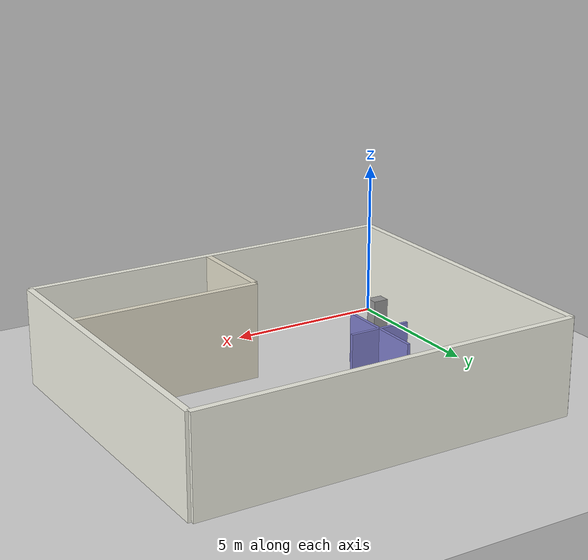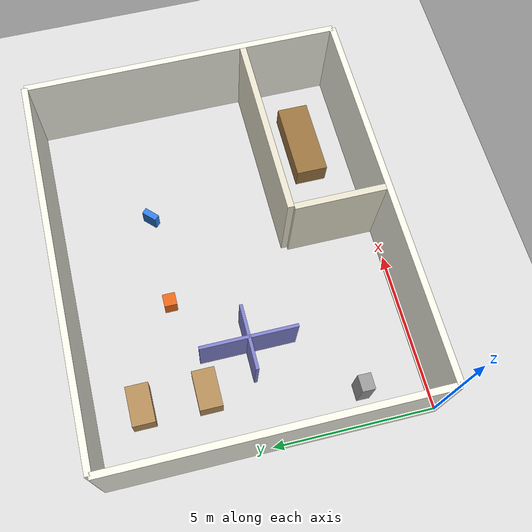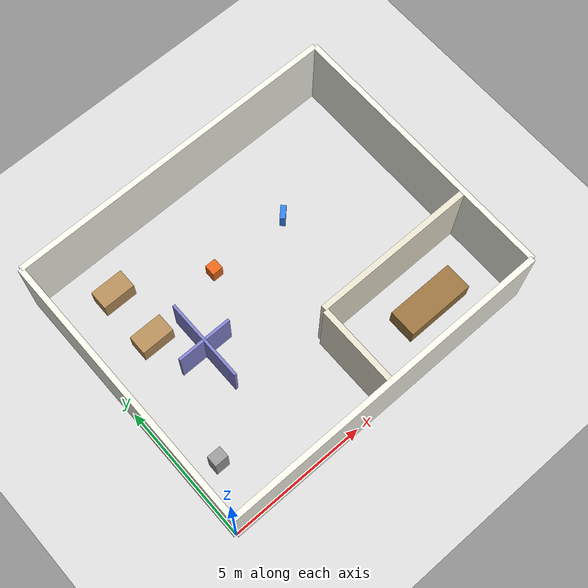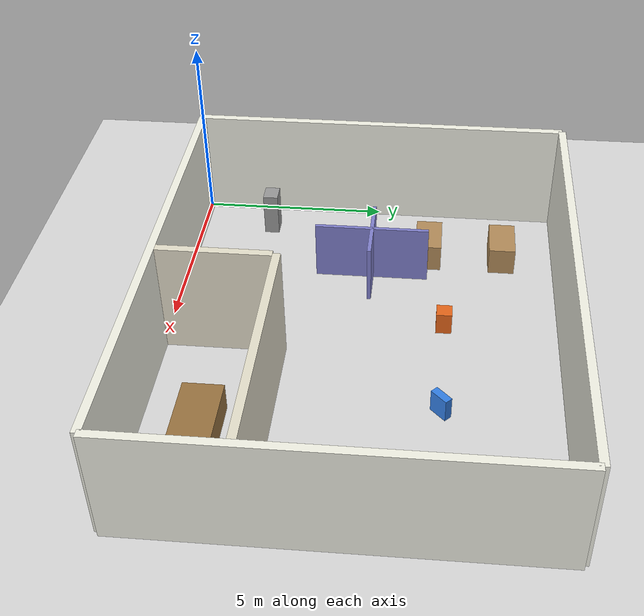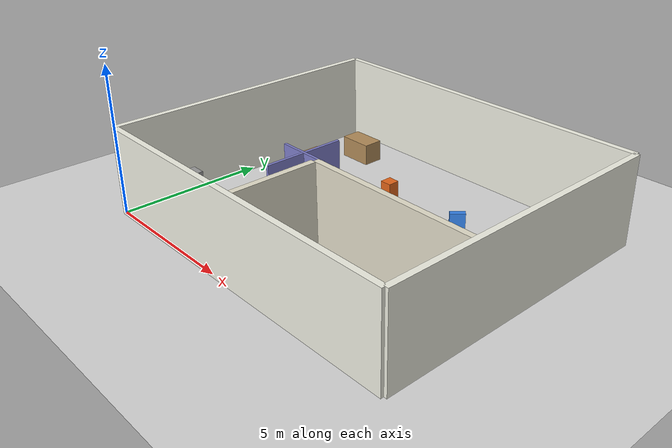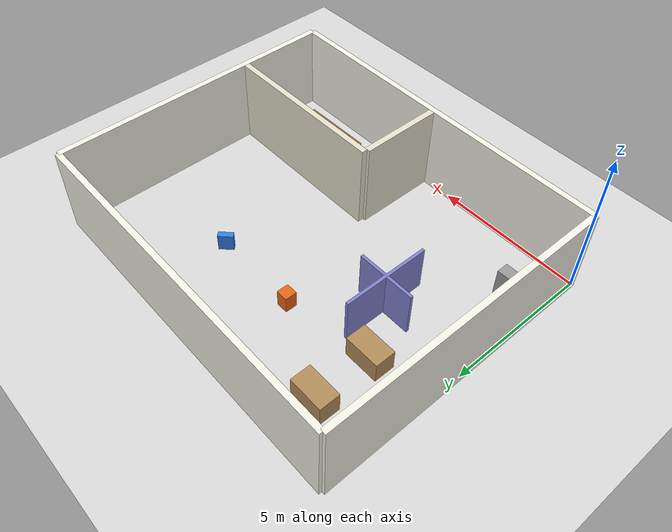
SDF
<?xml version="1.0" ?>
<!--
  Office World for Ground Robot Indoor Navigation (Gazebo Harmonic / SDF 1.9)
  Layout: Open-plan office with cubicles, corridors, and meeting room.
-->
<sdf version="1.9">
  <world name="office">

    <!-- ── Physics ─────────────────────────────────────────────────────── -->
    <physics name="default" type="dart">
      <max_step_size>0.004</max_step_size>
      <real_time_factor>1</real_time_factor>
    </physics>

    <!-- ── Required plugins ────────────────────────────────────────────── -->
    <plugin filename="gz-sim-physics-system"
            name="gz::sim::systems::Physics"/>
    <plugin filename="gz-sim-user-commands-system"
            name="gz::sim::systems::UserCommands"/>
    <plugin filename="gz-sim-scene-broadcaster-system"
            name="gz::sim::systems::SceneBroadcaster"/>
    <plugin filename="gz-sim-sensors-system"
            name="gz::sim::systems::Sensors">
      <render_engine>ogre2</render_engine>
    </plugin>
    <plugin filename="gz-sim-contact-system"
            name="gz::sim::systems::Contact"/>

    <!-- ── Lighting ─────────────────────────────────────────────────────── -->
    <light type="directional" name="sun">
      <cast_shadows>true</cast_shadows>
      <pose>0 0 10 0 0 0</pose>
      <diffuse>0.9 0.9 0.9 1</diffuse>
      <specular>0.2 0.2 0.2 1</specular>
      <direction>-0.5 0.1 -0.9</direction>
    </light>

    <!-- ── Ground plane ─────────────────────────────────────────────────── -->
    <model name="ground_plane">
      <static>true</static>
      <link name="link">
        <collision name="collision">
          <geometry>
            <plane><normal>0 0 1</normal><size>100 100</size></plane>
          </geometry>
        </collision>
        <visual name="visual">
          <geometry>
            <plane><normal>0 0 1</normal><size>100 100</size></plane>
          </geometry>
          <material><ambient>0.85 0.85 0.85 1</ambient><diffuse>0.85 0.85 0.85 1</diffuse></material>
        </visual>
      </link>
    </model>

    <!-- ── OUTER WALLS ──────────────────────────────────────────────────── -->
    <model name="wall_south">
      <static>true</static>
      <pose>6 0 1.5 0 0 0</pose>
      <link name="link">
        <collision name="collision"><geometry><box><size>12 0.2 3.0</size></box></geometry></collision>
        <visual name="visual">
          <geometry><box><size>12 0.2 3.0</size></box></geometry>
          <material><ambient>0.95 0.95 0.9 1</ambient><diffuse>0.95 0.95 0.9 1</diffuse></material>
        </visual>
      </link>
    </model>

    <model name="wall_north">
      <static>true</static>
      <pose>6 10 1.5 0 0 0</pose>
      <link name="link">
        <collision name="collision"><geometry><box><size>12 0.2 3.0</size></box></geometry></collision>
        <visual name="visual">
          <geometry><box><size>12 0.2 3.0</size></box></geometry>
          <material><ambient>0.95 0.95 0.9 1</ambient><diffuse>0.95 0.95 0.9 1</diffuse></material>
        </visual>
      </link>
    </model>

    <model name="wall_west">
      <static>true</static>
      <pose>0 5 1.5 0 0 0</pose>
      <link name="link">
        <collision name="collision"><geometry><box><size>0.2 10 3.0</size></box></geometry></collision>
        <visual name="visual">
          <geometry><box><size>0.2 10 3.0</size></box></geometry>
          <material><ambient>0.95 0.95 0.9 1</ambient><diffuse>0.95 0.95 0.9 1</diffuse></material>
        </visual>
      </link>
    </model>

    <model name="wall_east">
      <static>true</static>
      <pose>12 5 1.5 0 0 0</pose>
      <link name="link">
        <collision name="collision"><geometry><box><size>0.2 10 3.0</size></box></geometry></collision>
        <visual name="visual">
          <geometry><box><size>0.2 10 3.0</size></box></geometry>
          <material><ambient>0.95 0.95 0.9 1</ambient><diffuse>0.95 0.95 0.9 1</diffuse></material>
        </visual>
      </link>
    </model>

    <!-- ── MEETING ROOM (south-east corner) ─────────────────────────────── -->
    <!-- South wall of meeting room (inner) -->
    <model name="meeting_wall_south">
      <static>true</static>
      <pose>9 3 1.5 0 0 0</pose>
      <link name="link">
        <collision name="collision"><geometry><box><size>5.8 0.2 3.0</size></box></geometry></collision>
        <visual name="visual">
          <geometry><box><size>5.8 0.2 3.0</size></box></geometry>
          <material><ambient>0.9 0.88 0.8 1</ambient><diffuse>0.9 0.88 0.8 1</diffuse></material>
        </visual>
      </link>
    </model>

    <!-- West wall of meeting room with door gap -->
    <model name="meeting_wall_west_lower">
      <static>true</static>
      <pose>6.1 1.5 1.5 0 0 0</pose>
      <link name="link">
        <collision name="collision"><geometry><box><size>0.2 2.8 3.0</size></box></geometry></collision>
        <visual name="visual">
          <geometry><box><size>0.2 2.8 3.0</size></box></geometry>
          <material><ambient>0.9 0.88 0.8 1</ambient><diffuse>0.9 0.88 0.8 1</diffuse></material>
        </visual>
      </link>
    </model>

    <!-- ── CUBICLE DIVIDERS ─────────────────────────────────────────────── -->
    <model name="cubicle_divider_1">
      <static>true</static>
      <pose>3 5 0.8 0 0 0</pose>
      <link name="link">
        <collision name="collision"><geometry><box><size>0.1 3 1.6</size></box></geometry></collision>
        <visual name="visual">
          <geometry><box><size>0.1 3 1.6</size></box></geometry>
          <material><ambient>0.5 0.5 0.7 1</ambient><diffuse>0.5 0.5 0.8 1</diffuse></material>
        </visual>
      </link>
    </model>

    <model name="cubicle_divider_2">
      <static>true</static>
      <pose>3 5 0.8 0 0 1.5708</pose>
      <link name="link">
        <collision name="collision"><geometry><box><size>0.1 2 1.6</size></box></geometry></collision>
        <visual name="visual">
          <geometry><box><size>0.1 2 1.6</size></box></geometry>
          <material><ambient>0.5 0.5 0.7 1</ambient><diffuse>0.5 0.5 0.8 1</diffuse></material>
        </visual>
      </link>
    </model>

    <!-- ── OFFICE FURNITURE ─────────────────────────────────────────────── -->

    <!-- Desk 1 -->
    <model name="desk_1">
      <static>true</static>
      <pose>2 6.5 0.375 0 0 0</pose>
      <link name="link">
        <collision name="collision"><geometry><box><size>1.2 0.7 0.75</size></box></geometry></collision>
        <visual name="visual">
          <geometry><box><size>1.2 0.7 0.75</size></box></geometry>
          <material><ambient>0.7 0.55 0.35 1</ambient><diffuse>0.7 0.55 0.35 1</diffuse></material>
        </visual>
      </link>
    </model>

    <!-- Desk 2 -->
    <model name="desk_2">
      <static>true</static>
      <pose>2 8.5 0.375 0 0 0</pose>
      <link name="link">
        <collision name="collision"><geometry><box><size>1.2 0.7 0.75</size></box></geometry></collision>
        <visual name="visual">
          <geometry><box><size>1.2 0.7 0.75</size></box></geometry>
          <material><ambient>0.7 0.55 0.35 1</ambient><diffuse>0.7 0.55 0.35 1</diffuse></material>
        </visual>
      </link>
    </model>

    <!-- Filing cabinet -->
    <model name="filing_cabinet">
      <static>true</static>
      <pose>1 2 0.6 0 0 0</pose>
      <link name="link">
        <collision name="collision"><geometry><box><size>0.5 0.4 1.2</size></box></geometry></collision>
        <visual name="visual">
          <geometry><box><size>0.5 0.4 1.2</size></box></geometry>
          <material><ambient>0.6 0.6 0.6 1</ambient><diffuse>0.6 0.6 0.6 1</diffuse></material>
        </visual>
      </link>
    </model>

    <!-- Meeting table -->
    <model name="meeting_table">
      <static>true</static>
      <pose>9.5 1.5 0.375 0 0 0</pose>
      <link name="link">
        <collision name="collision"><geometry><box><size>2.5 1.0 0.75</size></box></geometry></collision>
        <visual name="visual">
          <geometry><box><size>2.5 1.0 0.75</size></box></geometry>
          <material><ambient>0.55 0.4 0.2 1</ambient><diffuse>0.6 0.45 0.25 1</diffuse></material>
        </visual>
      </link>
    </model>

    <!-- ── OBSTACLES ─────────────────────────────────────────────────────── -->
    <model name="obstacle_1">
      <static>true</static>
      <pose>5 7 0.3 0 0 0</pose>
      <link name="link">
        <collision name="collision"><geometry><box><size>0.4 0.4 0.6</size></box></geometry></collision>
        <visual name="visual">
          <geometry><box><size>0.4 0.4 0.6</size></box></geometry>
          <material><ambient>0.9 0.4 0.1 1</ambient><diffuse>0.9 0.4 0.1 1</diffuse></material>
        </visual>
      </link>
    </model>

    <model name="obstacle_2">
      <static>true</static>
      <pose>8 7 0.3 0 0 0.785</pose>
      <link name="link">
        <collision name="collision"><geometry><box><size>0.5 0.2 0.6</size></box></geometry></collision>
        <visual name="visual">
          <geometry><box><size>0.5 0.2 0.6</size></box></geometry>
          <material><ambient>0.2 0.5 0.9 1</ambient><diffuse>0.2 0.5 0.9 1</diffuse></material>
        </visual>
      </link>
    </model>

  </world>
</sdf>
